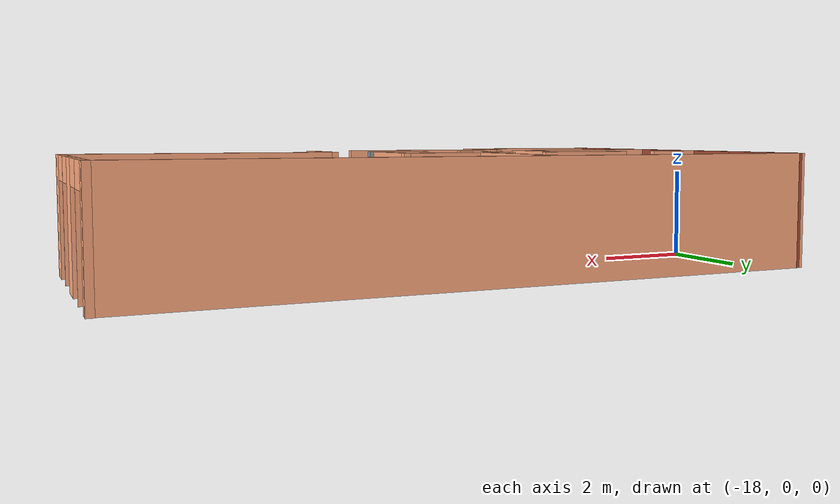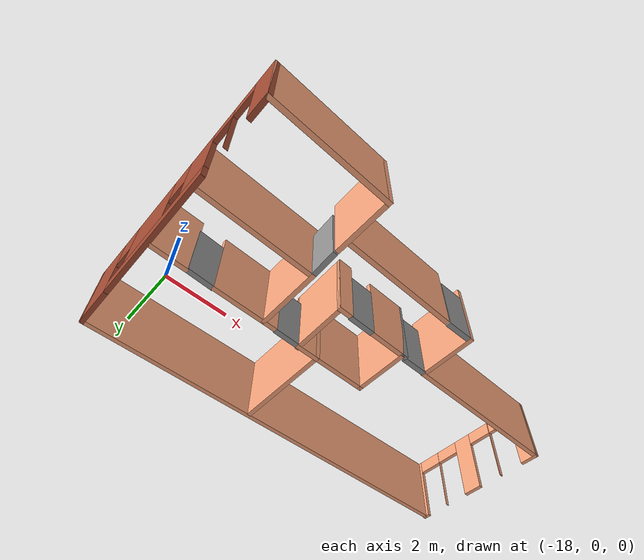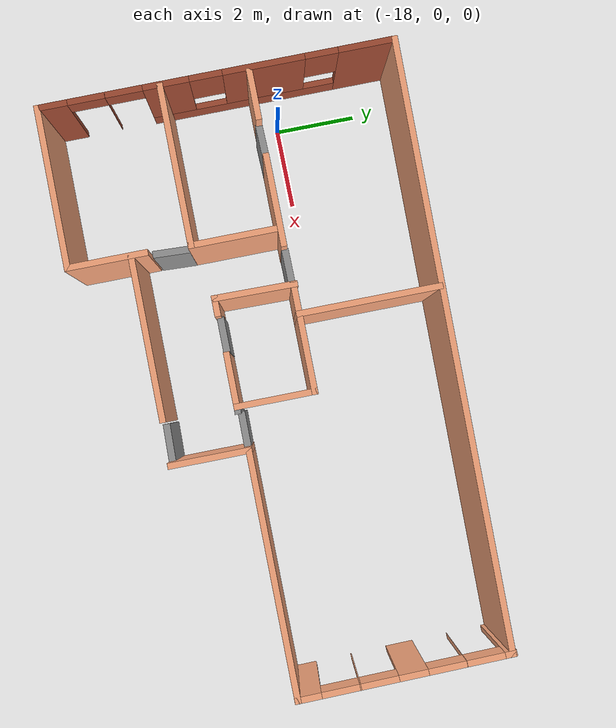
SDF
<?xml version='1.0'?>
<sdf version='1.6'>
  <model name='floor'>
    <pose frame=''>-11.569 -1.30283 0 0 -0 0</pose>
    <link name='Door_0'>
      <collision name='Door_0_Collision'>
        <geometry>
          <box>
            <size>0.9 0.17 2</size>
          </box>
        </geometry>
        <pose frame=''>0 0 1 0 -0 0</pose>
      </collision>
      <visual name='Door_0_Visual'>
        <pose frame=''>0 0 1 0 -0 0</pose>
        <geometry>
          <box>
            <size>0.9 0.17 2</size>
          </box>
        </geometry>
        <material>
          <script>
            <uri>file://media/materials/scripts/gazebo.material</uri>
            <name>Gazebo/Grey</name>
          </script>
        </material>
      </visual>
      <pose frame=''>1.02951 -0.972733 0 0 -0 3.13565</pose>
    </link>
    <link name='Door_1'>
      <collision name='Door_1_Collision'>
        <geometry>
          <box>
            <size>0.9 0.17 2</size>
          </box>
        </geometry>
        <pose frame=''>0 0 1 0 -0 0</pose>
      </collision>
      <visual name='Door_1_Visual'>
        <pose frame=''>0 0 1 0 -0 0</pose>
        <geometry>
          <box>
            <size>0.9 0.17 2</size>
          </box>
        </geometry>
        <material>
          <script>
            <uri>file://media/materials/scripts/gazebo.material</uri>
            <name>Gazebo/Grey</name>
          </script>
        </material>
      </visual>
      <pose frame=''>0.977845 -2.78613 0 0 -0 3.11672</pose>
    </link>
    <link name='Door_2'>
      <collision name='Door_2_Collision'>
        <geometry>
          <box>
            <size>0.9 0.17 2</size>
          </box>
        </geometry>
        <pose frame=''>0 0 1 0 -0 0</pose>
      </collision>
      <visual name='Door_2_Visual'>
        <pose frame=''>0 0 1 0 -0 0</pose>
        <geometry>
          <box>
            <size>0.9 0.17 2</size>
          </box>
        </geometry>
        <material>
          <script>
            <uri>file://media/materials/scripts/gazebo.material</uri>
            <name>Gazebo/Grey</name>
          </script>
        </material>
      </visual>
      <pose frame=''>-1.28317 -1.03052 0 0 -0 0</pose>
    </link>
    <link name='Door_3'>
      <collision name='Door_3_Collision'>
        <geometry>
          <box>
            <size>0.9 0.17 2</size>
          </box>
        </geometry>
        <pose frame=''>0 0 1 0 -0 0</pose>
      </collision>
      <visual name='Door_3_Visual'>
        <pose frame=''>0 0 1 0 -0 0</pose>
        <geometry>
          <box>
            <size>0.9 0.17 2</size>
          </box>
        </geometry>
        <material>
          <script>
            <uri>file://media/materials/scripts/gazebo.material</uri>
            <name>Gazebo/Grey</name>
          </script>
        </material>
      </visual>
      <pose frame=''>-2.58658 0.804898 0 0 0 -3.13144</pose>
    </link>
    <link name='Door_4'>
      <collision name='Door_4_Collision'>
        <geometry>
          <box>
            <size>0.9 0.17 2</size>
          </box>
        </geometry>
        <pose frame=''>0 0 1 0 -0 0</pose>
      </collision>
      <visual name='Door_4_Visual'>
        <pose frame=''>0 0 1 0 -0 0</pose>
        <geometry>
          <box>
            <size>0.9 0.17 2</size>
          </box>
        </geometry>
        <material>
          <script>
            <uri>file://media/materials/scripts/gazebo.material</uri>
            <name>Gazebo/Grey</name>
          </script>
        </material>
      </visual>
      <pose frame=''>-5.6722 0.778297 0 0 0 -3.11551</pose>
    </link>
    <link name='Door_5'>
      <collision name='Door_5_Collision'>
        <geometry>
          <box>
            <size>0.9 0.17 2</size>
          </box>
        </geometry>
        <pose frame=''>0 0 1 0 -0 0</pose>
      </collision>
      <visual name='Door_5_Visual'>
        <pose frame=''>0 0 1 0 -0 0</pose>
        <geometry>
          <box>
            <size>0.9 0.17 2</size>
          </box>
        </geometry>
        <material>
          <script>
            <uri>file://media/materials/scripts/gazebo.material</uri>
            <name>Gazebo/Grey</name>
          </script>
        </material>
      </visual>
      <pose frame=''>-3.49099 -1.88172 0 0 0 -1.61727</pose>
    </link>
    <link name='Wall_1'>
      <pose frame=''>-7.35019 -0.000471 0 0 0 -1.5708</pose>
      <visual name='Wall_1_Visual_0'>
        <pose frame=''>-3.65469 0 1.25 0 -0 0</pose>
        <geometry>
          <box>
            <size>1.44062 0.15 2.5</size>
          </box>
        </geometry>
        <material>
          <script>
            <uri>file://media/materials/scripts/gazebo.material</uri>
            <name>Gazebo/Bricks</name>
          </script>
          <ambient>1 0.666667 0.498039 1</ambient>
        </material>
        <meta>
          <layer>0</layer>
        </meta>
      </visual>
      <collision name='Wall_1_Collision_0'>
        <geometry>
          <box>
            <size>1.44062 0.15 2.5</size>
          </box>
        </geometry>
        <pose frame=''>-3.65469 0 1.25 0 -0 0</pose>
      </collision>
      <visual name='Wall_1_Visual_1'>
        <pose frame=''>2.67926 0 1.25 0 -0 0</pose>
        <geometry>
          <box>
            <size>0.004407 0.15 2.5</size>
          </box>
        </geometry>
        <material>
          <script>
            <uri>file://media/materials/scripts/gazebo.material</uri>
            <name>Gazebo/Bricks</name>
          </script>
          <ambient>1 0.666667 0.498039 1</ambient>
        </material>
        <meta>
          <layer>0</layer>
        </meta>
      </visual>
      <collision name='Wall_1_Collision_1'>
        <geometry>
          <box>
            <size>0.004407 0.15 2.5</size>
          </box>
        </geometry>
        <pose frame=''>2.67926 0 1.25 0 -0 0</pose>
      </collision>
      <visual name='Wall_1_Visual_2'>
        <pose frame=''>3.97823 0 1.25 0 -0 0</pose>
        <geometry>
          <box>
            <size>0.793539 0.15 2.5</size>
          </box>
        </geometry>
        <material>
          <script>
            <uri>file://media/materials/scripts/gazebo.material</uri>
            <name>Gazebo/Bricks</name>
          </script>
          <ambient>1 0.666667 0.498039 1</ambient>
        </material>
        <meta>
          <layer>0</layer>
        </meta>
      </visual>
      <collision name='Wall_1_Collision_2'>
        <geometry>
          <box>
            <size>0.793539 0.15 2.5</size>
          </box>
        </geometry>
        <pose frame=''>3.97823 0 1.25 0 -0 0</pose>
      </collision>
      <visual name='Wall_1_Visual_3'>
        <pose frame=''>-0.578664 0 0.25 0 -0 0</pose>
        <geometry>
          <box>
            <size>4.71144 0.15 0.5</size>
          </box>
        </geometry>
        <material>
          <script>
            <uri>file://media/materials/scripts/gazebo.material</uri>
            <name>Gazebo/Bricks</name>
          </script>
          <ambient>1 0.666667 0.498039 1</ambient>
        </material>
        <meta>
          <layer>0</layer>
        </meta>
      </visual>
      <collision name='Wall_1_Collision_3'>
        <geometry>
          <box>
            <size>4.71144 0.15 0.5</size>
          </box>
        </geometry>
        <pose frame=''>-0.578664 0 0.25 0 -0 0</pose>
      </collision>
      <visual name='Wall_1_Visual_4'>
        <pose frame=''>-1.13787 0 1.5 0 -0 0</pose>
        <geometry>
          <box>
            <size>1.99302 0.15 2</size>
          </box>
        </geometry>
        <material>
          <script>
            <uri>file://media/materials/scripts/gazebo.material</uri>
            <name>Gazebo/Bricks</name>
          </script>
          <ambient>1 0.666667 0.498039 1</ambient>
        </material>
        <meta>
          <layer>0</layer>
        </meta>
      </visual>
      <collision name='Wall_1_Collision_4'>
        <geometry>
          <box>
            <size>1.99302 0.15 2</size>
          </box>
        </geometry>
        <pose frame=''>-1.13787 0 1.5 0 -0 0</pose>
      </collision>
      <visual name='Wall_1_Visual_5'>
        <pose frame=''>1.21785 0 1.5 0 -0 0</pose>
        <geometry>
          <box>
            <size>1.11841 0.15 2</size>
          </box>
        </geometry>
        <material>
          <script>
            <uri>file://media/materials/scripts/gazebo.material</uri>
            <name>Gazebo/Bricks</name>
          </script>
          <ambient>1 0.666667 0.498039 1</ambient>
        </material>
        <meta>
          <layer>0</layer>
        </meta>
      </visual>
      <collision name='Wall_1_Collision_5'>
        <geometry>
          <box>
            <size>1.11841 0.15 2</size>
          </box>
        </geometry>
        <pose frame=''>1.21785 0 1.5 0 -0 0</pose>
      </collision>
      <visual name='Wall_1_Visual_6'>
        <pose frame=''>-2.53438 0 1.9 0 -0 0</pose>
        <geometry>
          <box>
            <size>0.8 0.15 1.2</size>
          </box>
        </geometry>
        <material>
          <script>
            <uri>file://media/materials/scripts/gazebo.material</uri>
            <name>Gazebo/Bricks</name>
          </script>
          <ambient>1 0.666667 0.498039 1</ambient>
        </material>
        <meta>
          <layer>0</layer>
        </meta>
      </visual>
      <collision name='Wall_1_Collision_6'>
        <geometry>
          <box>
            <size>0.8 0.15 1.2</size>
          </box>
        </geometry>
        <pose frame=''>-2.53438 0 1.9 0 -0 0</pose>
      </collision>
      <visual name='Wall_1_Visual_7'>
        <pose frame=''>0.258639 0 1.9 0 -0 0</pose>
        <geometry>
          <box>
            <size>0.8 0.15 1.2</size>
          </box>
        </geometry>
        <material>
          <script>
            <uri>file://media/materials/scripts/gazebo.material</uri>
            <name>Gazebo/Bricks</name>
          </script>
          <ambient>1 0.666667 0.498039 1</ambient>
        </material>
        <meta>
          <layer>0</layer>
        </meta>
      </visual>
      <collision name='Wall_1_Collision_7'>
        <geometry>
          <box>
            <size>0.8 0.15 1.2</size>
          </box>
        </geometry>
        <pose frame=''>0.258639 0 1.9 0 -0 0</pose>
      </collision>
      <visual name='Wall_1_Visual_8'>
        <pose frame=''>3.13146 0 2.25 0 -0 0</pose>
        <geometry>
          <box>
            <size>0.9 0.15 0.5</size>
          </box>
        </geometry>
        <material>
          <script>
            <uri>file://media/materials/scripts/gazebo.material</uri>
            <name>Gazebo/Bricks</name>
          </script>
          <ambient>1 0.666667 0.498039 1</ambient>
        </material>
        <meta>
          <layer>0</layer>
        </meta>
      </visual>
      <collision name='Wall_1_Collision_8'>
        <geometry>
          <box>
            <size>0.9 0.15 0.5</size>
          </box>
        </geometry>
        <pose frame=''>3.13146 0 2.25 0 -0 0</pose>
      </collision>
      <visual name='Wall_1_Visual_9'>
        <pose frame=''>2.22705 0 2.25 0 -0 0</pose>
        <geometry>
          <box>
            <size>0.9 0.15 0.5</size>
          </box>
        </geometry>
        <material>
          <script>
            <uri>file://media/materials/scripts/gazebo.material</uri>
            <name>Gazebo/Bricks</name>
          </script>
          <ambient>1 0.666667 0.498039 1</ambient>
        </material>
        <meta>
          <layer>0</layer>
        </meta>
      </visual>
      <collision name='Wall_1_Collision_9'>
        <geometry>
          <box>
            <size>0.9 0.15 0.5</size>
          </box>
        </geometry>
        <pose frame=''>2.22705 0 2.25 0 -0 0</pose>
      </collision>
    </link>
    <link name='Wall_10'>
      <collision name='Wall_10_Collision'>
        <geometry>
          <box>
            <size>0.25 0.15 2.5</size>
          </box>
        </geometry>
        <pose frame=''>0 0 1.25 0 -0 0</pose>
      </collision>
      <visual name='Wall_10_Visual'>
        <pose frame=''>0 0 1.25 0 -0 0</pose>
        <geometry>
          <box>
            <size>0.25 0.15 2.5</size>
          </box>
        </geometry>
        <material>
          <script>
            <uri>file://media/materials/scripts/gazebo.material</uri>
            <name>Gazebo/Grey</name>
          </script>
          <ambient>1 1 1 1</ambient>
        </material>
        <meta>
          <layer>0</layer>
        </meta>
      </visual>
      <pose frame=''>0.502242 -1.03052 0 0 -0 3.14159</pose>
    </link>
    <link name='Wall_11'>
      <collision name='Wall_11_Collision'>
        <geometry>
          <box>
            <size>2 0.15 2.5</size>
          </box>
        </geometry>
        <pose frame=''>0 0 1.25 0 -0 0</pose>
      </collision>
      <visual name='Wall_11_Visual'>
        <pose frame=''>0 0 1.25 0 -0 0</pose>
        <geometry>
          <box>
            <size>2 0.15 2.5</size>
          </box>
        </geometry>
        <material>
          <script>
            <uri>file://media/materials/scripts/gazebo.material</uri>
            <name>Gazebo/Grey</name>
          </script>
          <ambient>1 0.666667 0.498039 1</ambient>
        </material>
        <meta>
          <layer>0</layer>
        </meta>
      </visual>
      <pose frame=''>0.452243 -0.105516 0 0 -0 1.5708</pose>
    </link>
    <link name='Wall_12'>
      <collision name='Wall_12_Collision'>
        <geometry>
          <box>
            <size>2 0.15 2.5</size>
          </box>
        </geometry>
        <pose frame=''>0 0 1.25 0 -0 0</pose>
      </collision>
      <visual name='Wall_12_Visual'>
        <pose frame=''>0 0 1.25 0 -0 0</pose>
        <geometry>
          <box>
            <size>2 0.15 2.5</size>
          </box>
        </geometry>
        <material>
          <script>
            <uri>file://media/materials/scripts/gazebo.material</uri>
            <name>Gazebo/Grey</name>
          </script>
          <ambient>1 0.666667 0.498039 1</ambient>
        </material>
        <meta>
          <layer>0</layer>
        </meta>
      </visual>
      <pose frame=''>-0.472758 0.819484 0 0 -0 3.14159</pose>
    </link>
    <link name='Wall_13'>
      <collision name='Wall_13_Collision'>
        <geometry>
          <box>
            <size>3.5 0.15 2.5</size>
          </box>
        </geometry>
        <pose frame=''>0 0 1.25 0 -0 0</pose>
      </collision>
      <visual name='Wall_13_Visual'>
        <pose frame=''>0 0 1.25 0 -0 0</pose>
        <geometry>
          <box>
            <size>3.5 0.15 2.5</size>
          </box>
        </geometry>
        <material>
          <script>
            <uri>file://media/materials/scripts/gazebo.material</uri>
            <name>Gazebo/Grey</name>
          </script>
          <ambient>1 0.666667 0.498039 1</ambient>
        </material>
        <meta>
          <layer>0</layer>
        </meta>
      </visual>
      <pose frame=''>-1.39776 2.49448 0 0 -0 1.5708</pose>
    </link>
    <link name='Wall_15'>
      <collision name='Wall_15_Collision'>
        <geometry>
          <box>
            <size>0.856401 0.15 2.5</size>
          </box>
        </geometry>
        <pose frame=''>0 0 1.25 0 -0 0</pose>
      </collision>
      <visual name='Wall_15_Visual'>
        <pose frame=''>0 0 1.25 0 -0 0</pose>
        <geometry>
          <box>
            <size>0.856401 0.15 2.5</size>
          </box>
        </geometry>
        <material>
          <script>
            <uri>file://media/materials/scripts/gazebo.material</uri>
            <name>Gazebo/Grey</name>
          </script>
          <ambient>1 0.666667 0.498039 1</ambient>
        </material>
        <meta>
          <layer>0</layer>
        </meta>
      </visual>
      <pose frame=''>-1.75096 0.819484 0 0 0 -3.14159</pose>
    </link>
    <link name='Wall_17'>
      <collision name='Wall_17_Collision'>
        <geometry>
          <box>
            <size>2.02679 0.15 2.5</size>
          </box>
        </geometry>
        <pose frame=''>0 0 1.25 0 -0 0</pose>
      </collision>
      <visual name='Wall_17_Visual'>
        <pose frame=''>0 0 1.25 0 -0 0</pose>
        <geometry>
          <box>
            <size>2.02679 0.15 2.5</size>
          </box>
        </geometry>
        <material>
          <script>
            <uri>file://media/materials/scripts/gazebo.material</uri>
            <name>Gazebo/Grey</name>
          </script>
          <ambient>1 0.666667 0.498039 1</ambient>
        </material>
        <meta>
          <layer>0</layer>
        </meta>
      </visual>
      <pose frame=''>-2.11746 -0.092216 0 0 0 -1.58497</pose>
    </link>
    <link name='Wall_18'>
      <collision name='Wall_18_Collision'>
        <geometry>
          <box>
            <size>0.506401 0.15 2.5</size>
          </box>
        </geometry>
        <pose frame=''>0 0 1.25 0 -0 0</pose>
      </collision>
      <visual name='Wall_18_Visual'>
        <pose frame=''>0 0 1.25 0 -0 0</pose>
        <geometry>
          <box>
            <size>0.506401 0.15 2.5</size>
          </box>
        </geometry>
        <material>
          <script>
            <uri>file://media/materials/scripts/gazebo.material</uri>
            <name>Gazebo/Grey</name>
          </script>
          <ambient>1 0.666667 0.498039 1</ambient>
        </material>
        <meta>
          <layer>0</layer>
        </meta>
      </visual>
      <pose frame=''>-1.95256 -1.05712 0 0 -0 0</pose>
    </link>
    <link name='Wall_20'>
      <collision name='Wall_20_Collision'>
        <geometry>
          <box>
            <size>1.38001 0.15 2.5</size>
          </box>
        </geometry>
        <pose frame=''>0 0 1.25 0 -0 0</pose>
      </collision>
      <visual name='Wall_20_Visual'>
        <pose frame=''>0 0 1.25 0 -0 0</pose>
        <geometry>
          <box>
            <size>1.38001 0.15 2.5</size>
          </box>
        </geometry>
        <material>
          <script>
            <uri>file://media/materials/scripts/gazebo.material</uri>
            <name>Gazebo/Grey</name>
          </script>
          <ambient>1 0.666667 0.498039 1</ambient>
        </material>
        <meta>
          <layer>0</layer>
        </meta>
      </visual>
      <pose frame=''>-0.162763 -1.03052 0 0 -0 0</pose>
    </link>
    <link name='Wall_22'>
      <collision name='Wall_22_Collision'>
        <geometry>
          <box>
            <size>2.25 0.15 2.5</size>
          </box>
        </geometry>
        <pose frame=''>0 0 1.25 0 -0 0</pose>
      </collision>
      <visual name='Wall_22_Visual'>
        <pose frame=''>0 0 1.25 0 -0 0</pose>
        <geometry>
          <box>
            <size>2.25 0.15 2.5</size>
          </box>
        </geometry>
        <material>
          <script>
            <uri>file://media/materials/scripts/gazebo.material</uri>
            <name>Gazebo/Grey</name>
          </script>
          <ambient>1 0.666667 0.498039 1</ambient>
        </material>
        <meta>
          <layer>0</layer>
        </meta>
      </visual>
      <pose frame=''>-4.14199 0.778297 0 0 -0 3.14159</pose>
    </link>
    <link name='Wall_25'>
      <collision name='Wall_25_Collision'>
        <geometry>
          <box>
            <size>1.25 0.15 2.5</size>
          </box>
        </geometry>
        <pose frame=''>0 0 1.25 0 -0 0</pose>
      </collision>
      <visual name='Wall_25_Visual'>
        <pose frame=''>0 0 1.25 0 -0 0</pose>
        <geometry>
          <box>
            <size>1.25 0.15 2.5</size>
          </box>
        </geometry>
        <material>
          <script>
            <uri>file://media/materials/scripts/gazebo.material</uri>
            <name>Gazebo/Grey</name>
          </script>
          <ambient>1 0.666667 0.498039 1</ambient>
        </material>
        <meta>
          <layer>0</layer>
        </meta>
      </visual>
      <pose frame=''>-6.70101 0.778297 0 0 -0 3.14159</pose>
    </link>
    <link name='Wall_29'>
      <collision name='Wall_29_Collision'>
        <geometry>
          <box>
            <size>2.25 0.15 2.5</size>
          </box>
        </geometry>
        <pose frame=''>0 0 1.25 0 -0 0</pose>
      </collision>
      <visual name='Wall_29_Visual'>
        <pose frame=''>0 0 1.25 0 -0 0</pose>
        <geometry>
          <box>
            <size>2.25 0.15 2.5</size>
          </box>
        </geometry>
        <material>
          <script>
            <uri>file://media/materials/scripts/gazebo.material</uri>
            <name>Gazebo/Grey</name>
          </script>
          <ambient>1 0.666667 0.498039 1</ambient>
        </material>
        <meta>
          <layer>0</layer>
        </meta>
      </visual>
      <pose frame=''>-3.46439 -0.310317 0 0 -0 1.5708</pose>
    </link>
    <link name='Wall_3'>
      <collision name='Wall_3_Collision'>
        <geometry>
          <box>
            <size>2 0.15 2.5</size>
          </box>
        </geometry>
        <pose frame=''>0 0 1.25 0 -0 0</pose>
      </collision>
      <visual name='Wall_3_Visual'>
        <pose frame=''>0 0 1.25 0 -0 0</pose>
        <geometry>
          <box>
            <size>2 0.15 2.5</size>
          </box>
        </geometry>
        <material>
          <script>
            <uri>file://media/materials/scripts/gazebo.material</uri>
            <name>Gazebo/Grey</name>
          </script>
          <ambient>1 0.666667 0.498039 1</ambient>
        </material>
        <meta>
          <layer>0</layer>
        </meta>
      </visual>
      <pose frame=''>1.49981 -1.87547 0 0 -0 1.5708</pose>
    </link>
    <link name='Wall_33'>
      <collision name='Wall_33_Collision'>
        <geometry>
          <box>
            <size>4 0.15 2.5</size>
          </box>
        </geometry>
        <pose frame=''>0 0 1.25 0 -0 0</pose>
      </collision>
      <visual name='Wall_33_Visual'>
        <pose frame=''>0 0 1.25 0 -0 0</pose>
        <geometry>
          <box>
            <size>4 0.15 2.5</size>
          </box>
        </geometry>
        <material>
          <script>
            <uri>file://media/materials/scripts/gazebo.material</uri>
            <name>Gazebo/Grey</name>
          </script>
          <ambient>1 0.666667 0.498039 1</ambient>
        </material>
        <meta>
          <layer>0</layer>
        </meta>
      </visual>
      <pose frame=''>-5.38939 -1.36032 0 0 -0 3.14159</pose>
    </link>
    <link name='Wall_37'>
      <collision name='Wall_37_Collision'>
        <geometry>
          <box>
            <size>4 0.15 2.5</size>
          </box>
        </geometry>
        <pose frame=''>0 0 1.25 0 -0 0</pose>
      </collision>
      <visual name='Wall_37_Visual'>
        <pose frame=''>0 0 1.25 0 -0 0</pose>
        <geometry>
          <box>
            <size>4 0.15 2.5</size>
          </box>
        </geometry>
        <material>
          <script>
            <uri>file://media/materials/scripts/gazebo.material</uri>
            <name>Gazebo/Grey</name>
          </script>
          <ambient>1 0.666667 0.498039 1</ambient>
        </material>
        <meta>
          <layer>0</layer>
        </meta>
      </visual>
      <pose frame=''>-5.42519 -4.30047 0 0 -0 0</pose>
    </link>
    <link name='Wall_38'>
      <collision name='Wall_38_Collision'>
        <geometry>
          <box>
            <size>2 0.15 2.5</size>
          </box>
        </geometry>
        <pose frame=''>0 0 1.25 0 -0 0</pose>
      </collision>
      <visual name='Wall_38_Visual'>
        <pose frame=''>0 0 1.25 0 -0 0</pose>
        <geometry>
          <box>
            <size>2 0.15 2.5</size>
          </box>
        </geometry>
        <material>
          <script>
            <uri>file://media/materials/scripts/gazebo.material</uri>
            <name>Gazebo/Grey</name>
          </script>
          <ambient>1 0.666667 0.498039 1</ambient>
        </material>
        <meta>
          <layer>0</layer>
        </meta>
      </visual>
      <pose frame=''>-3.50019 -3.37547 0 0 -0 1.5708</pose>
    </link>
    <link name='Wall_4'>
      <collision name='Wall_4_Collision'>
        <geometry>
          <box>
            <size>6 0.15 2.5</size>
          </box>
        </geometry>
        <pose frame=''>0 0 1.25 0 -0 0</pose>
      </collision>
      <visual name='Wall_4_Visual'>
        <pose frame=''>0 0 1.25 0 -0 0</pose>
        <geometry>
          <box>
            <size>6 0.15 2.5</size>
          </box>
        </geometry>
        <material>
          <script>
            <uri>file://media/materials/scripts/gazebo.material</uri>
            <name>Gazebo/Grey</name>
          </script>
          <ambient>1 0.666667 0.498039 1</ambient>
        </material>
        <meta>
          <layer>0</layer>
        </meta>
      </visual>
      <pose frame=''>4.42481 -0.950471 0 0 -0 0</pose>
    </link>
    <link name='Wall_40'>
      <collision name='Wall_40_Collision'>
        <geometry>
          <box>
            <size>4 0.15 2.5</size>
          </box>
        </geometry>
        <pose frame=''>0 0 1.25 0 -0 0</pose>
      </collision>
      <visual name='Wall_40_Visual'>
        <pose frame=''>0 0 1.25 0 -0 0</pose>
        <geometry>
          <box>
            <size>4 0.15 2.5</size>
          </box>
        </geometry>
        <material>
          <script>
            <uri>file://media/materials/scripts/gazebo.material</uri>
            <name>Gazebo/Grey</name>
          </script>
          <ambient>1 0.666667 0.498039 1</ambient>
        </material>
        <meta>
          <layer>0</layer>
        </meta>
      </visual>
      <pose frame=''>-1.51279 -2.78613 0 0 -0 0</pose>
    </link>
    <link name='Wall_5'>
      <pose frame=''>7.30443 1.59539 0 0 -0 1.58862</pose>
      <visual name='Wall_5_Visual_0'>
        <pose frame=''>-2.30154 0 1.25 0 -0 0</pose>
        <geometry>
          <box>
            <size>0.639454 0.15 2.5</size>
          </box>
        </geometry>
        <material>
          <script>
            <uri>file://media/materials/scripts/gazebo.material</uri>
            <name>Gazebo/Grey</name>
          </script>
          <ambient>1 0.666667 0.498039 1</ambient>
        </material>
        <meta>
          <layer>0</layer>
        </meta>
      </visual>
      <collision name='Wall_5_Collision_0'>
        <geometry>
          <box>
            <size>0.639454 0.15 2.5</size>
          </box>
        </geometry>
        <pose frame=''>-2.30154 0 1.25 0 -0 0</pose>
      </collision>
      <visual name='Wall_5_Visual_1'>
        <pose frame=''>-1.06828 0 1.25 0 -0 0</pose>
        <geometry>
          <box>
            <size>0.027067 0.15 2.5</size>
          </box>
        </geometry>
        <material>
          <script>
            <uri>file://media/materials/scripts/gazebo.material</uri>
            <name>Gazebo/Grey</name>
          </script>
          <ambient>1 0.666667 0.498039 1</ambient>
        </material>
        <meta>
          <layer>0</layer>
        </meta>
      </visual>
      <collision name='Wall_5_Collision_1'>
        <geometry>
          <box>
            <size>0.027067 0.15 2.5</size>
          </box>
        </geometry>
        <pose frame=''>-1.06828 0 1.25 0 -0 0</pose>
      </collision>
      <visual name='Wall_5_Visual_2'>
        <pose frame=''>0.192896 0 1.25 0 -0 0</pose>
        <geometry>
          <box>
            <size>0.695284 0.15 2.5</size>
          </box>
        </geometry>
        <material>
          <script>
            <uri>file://media/materials/scripts/gazebo.material</uri>
            <name>Gazebo/Grey</name>
          </script>
          <ambient>1 0.666667 0.498039 1</ambient>
        </material>
        <meta>
          <layer>0</layer>
        </meta>
      </visual>
      <collision name='Wall_5_Collision_2'>
        <geometry>
          <box>
            <size>0.695284 0.15 2.5</size>
          </box>
        </geometry>
        <pose frame=''>0.192896 0 1.25 0 -0 0</pose>
      </collision>
      <visual name='Wall_5_Visual_3'>
        <pose frame=''>1.44314 0 1.25 0 -0 0</pose>
        <geometry>
          <box>
            <size>0.005211 0.15 2.5</size>
          </box>
        </geometry>
        <material>
          <script>
            <uri>file://media/materials/scripts/gazebo.material</uri>
            <name>Gazebo/Grey</name>
          </script>
          <ambient>1 0.666667 0.498039 1</ambient>
        </material>
        <meta>
          <layer>0</layer>
        </meta>
      </visual>
      <collision name='Wall_5_Collision_3'>
        <geometry>
          <box>
            <size>0.005211 0.15 2.5</size>
          </box>
        </geometry>
        <pose frame=''>1.44314 0 1.25 0 -0 0</pose>
      </collision>
      <visual name='Wall_5_Visual_4'>
        <pose frame=''>2.48351 0 1.25 0 -0 0</pose>
        <geometry>
          <box>
            <size>0.275517 0.15 2.5</size>
          </box>
        </geometry>
        <material>
          <script>
            <uri>file://media/materials/scripts/gazebo.material</uri>
            <name>Gazebo/Grey</name>
          </script>
          <ambient>1 0.666667 0.498039 1</ambient>
        </material>
        <meta>
          <layer>0</layer>
        </meta>
      </visual>
      <collision name='Wall_5_Collision_4'>
        <geometry>
          <box>
            <size>0.275517 0.15 2.5</size>
          </box>
        </geometry>
        <pose frame=''>2.48351 0 1.25 0 -0 0</pose>
      </collision>
      <visual name='Wall_5_Visual_5'>
        <pose frame=''>-1.53181 0 2.25 0 -0 0</pose>
        <geometry>
          <box>
            <size>0.9 0.15 0.5</size>
          </box>
        </geometry>
        <material>
          <script>
            <uri>file://media/materials/scripts/gazebo.material</uri>
            <name>Gazebo/Grey</name>
          </script>
          <ambient>1 0.666667 0.498039 1</ambient>
        </material>
        <meta>
          <layer>0</layer>
        </meta>
      </visual>
      <collision name='Wall_5_Collision_5'>
        <geometry>
          <box>
            <size>0.9 0.15 0.5</size>
          </box>
        </geometry>
        <pose frame=''>-1.53181 0 2.25 0 -0 0</pose>
      </collision>
      <visual name='Wall_5_Visual_6'>
        <pose frame=''>-0.604746 0 2.25 0 -0 0</pose>
        <geometry>
          <box>
            <size>0.9 0.15 0.5</size>
          </box>
        </geometry>
        <material>
          <script>
            <uri>file://media/materials/scripts/gazebo.material</uri>
            <name>Gazebo/Grey</name>
          </script>
          <ambient>1 0.666667 0.498039 1</ambient>
        </material>
        <meta>
          <layer>0</layer>
        </meta>
      </visual>
      <collision name='Wall_5_Collision_6'>
        <geometry>
          <box>
            <size>0.9 0.15 0.5</size>
          </box>
        </geometry>
        <pose frame=''>-0.604746 0 2.25 0 -0 0</pose>
      </collision>
      <visual name='Wall_5_Visual_7'>
        <pose frame=''>0.990538 0 2.25 0 -0 0</pose>
        <geometry>
          <box>
            <size>0.9 0.15 0.5</size>
          </box>
        </geometry>
        <material>
          <script>
            <uri>file://media/materials/scripts/gazebo.material</uri>
            <name>Gazebo/Grey</name>
          </script>
          <ambient>1 0.666667 0.498039 1</ambient>
        </material>
        <meta>
          <layer>0</layer>
        </meta>
      </visual>
      <collision name='Wall_5_Collision_7'>
        <geometry>
          <box>
            <size>0.9 0.15 0.5</size>
          </box>
        </geometry>
        <pose frame=''>0.990538 0 2.25 0 -0 0</pose>
      </collision>
      <visual name='Wall_5_Visual_8'>
        <pose frame=''>1.89575 0 2.25 0 -0 0</pose>
        <geometry>
          <box>
            <size>0.9 0.15 0.5</size>
          </box>
        </geometry>
        <material>
          <script>
            <uri>file://media/materials/scripts/gazebo.material</uri>
            <name>Gazebo/Grey</name>
          </script>
          <ambient>1 0.666667 0.498039 1</ambient>
        </material>
        <meta>
          <layer>0</layer>
        </meta>
      </visual>
      <collision name='Wall_5_Collision_8'>
        <geometry>
          <box>
            <size>0.9 0.15 0.5</size>
          </box>
        </geometry>
        <pose frame=''>1.89575 0 2.25 0 -0 0</pose>
      </collision>
    </link>
    <link name='Wall_6'>
      <collision name='Wall_6_Collision'>
        <geometry>
          <box>
            <size>14.7604 0.15 2.5</size>
          </box>
        </geometry>
        <pose frame=''>0 0 1.25 0 -0 0</pose>
      </collision>
      <visual name='Wall_6_Visual'>
        <pose frame=''>0 0 1.25 0 -0 0</pose>
        <geometry>
          <box>
            <size>14.7604 0.15 2.5</size>
          </box>
        </geometry>
        <material>
          <script>
            <uri>file://media/materials/scripts/gazebo.material</uri>
            <name>Gazebo/Grey</name>
          </script>
          <ambient>1 0.666667 0.498039 1</ambient>
        </material>
        <meta>
          <layer>0</layer>
        </meta>
      </visual>
      <pose frame=''>-0.045565 4.20709 0 0 -0 3.12894</pose>
    </link>
    <static>1</static>
  </model>
</sdf>
